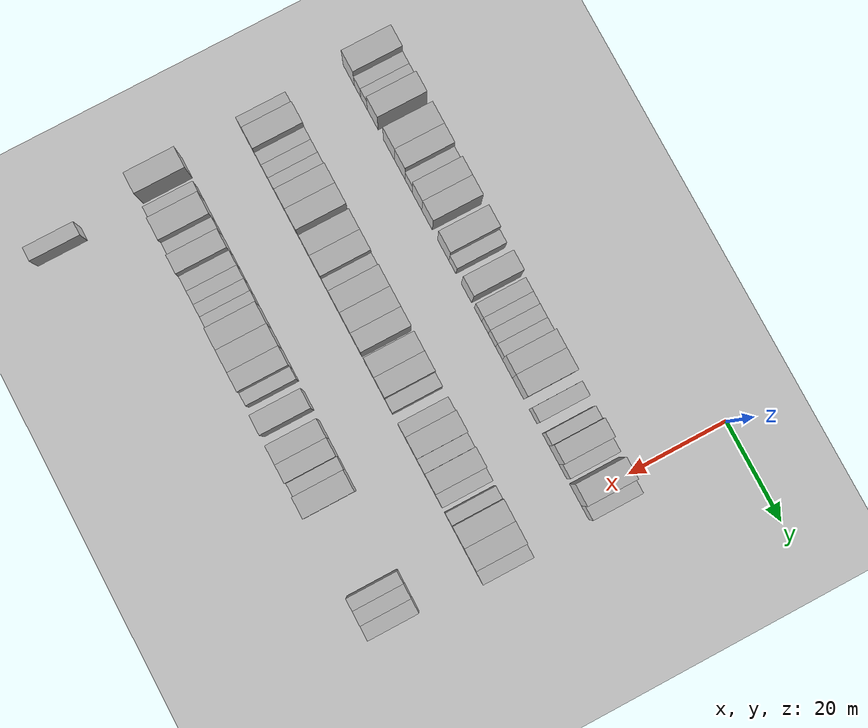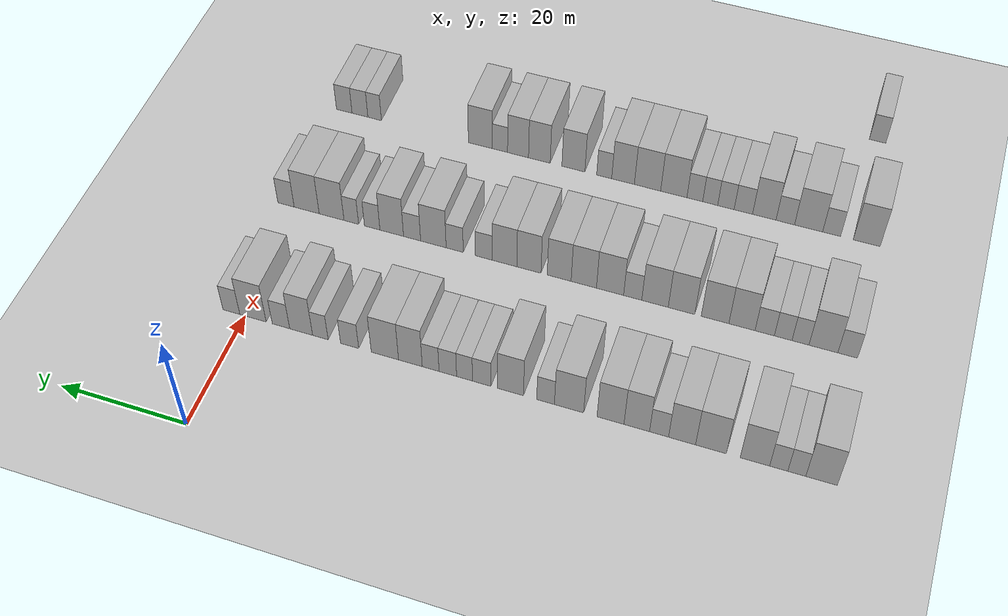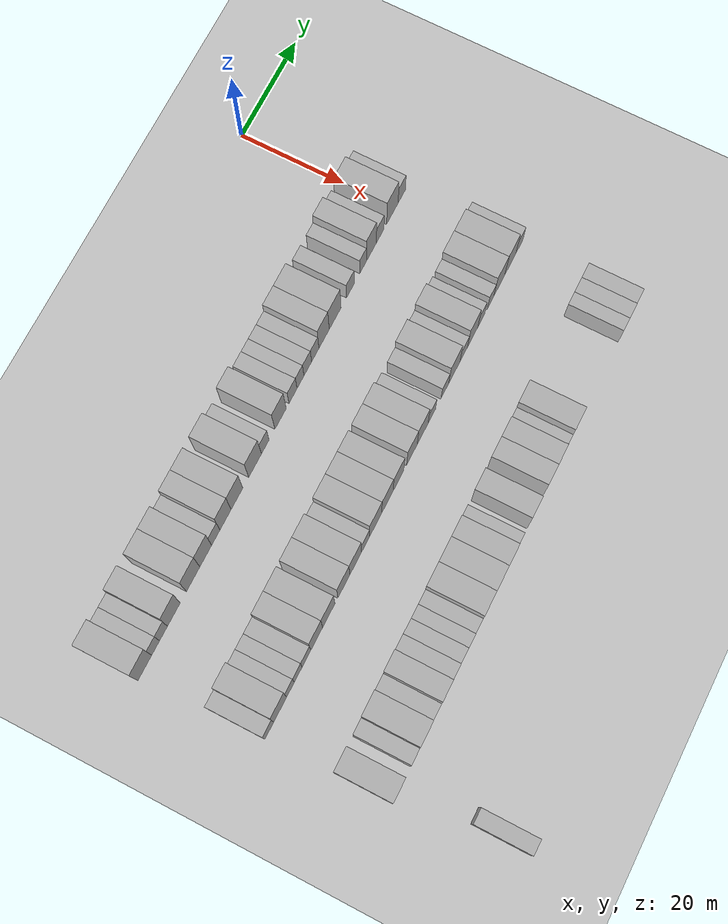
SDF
<sdf version="1.6">
 <world name="default">
  <include><name>ground_plane_1</name><uri>model://HANNAS_ground_plane</uri></include>
  <model name="building_68">
   <static>1</static>
   <pose>25.0000 -87.5973 0 0.000000 0.000000 0.000000</pose>
   <link name="link">
    <pose>0 0 4.50 0 0 0</pose>
    <collision name="collision"><geometry><box><size>10.0000 4.4231 9.0000</size></box></geometry></collision>
    <visual name="visual">
     <cast_shadows>0</cast_shadows>
     <geometry><box><size>10.0000 4.4231 9.0000</size></box></geometry>
     <material>
      <script>
       <uri>model://HANNAS_wall/materials/scripts</uri>
       <uri>model://HANNAS_wall/materials/textures</uri>
       <name>vrc/HANNAS_wall</name>
      </script>
     </material>
    </visual>
   </link>
  </model>
  <model name="building_69">
   <static>1</static>
   <pose>25.0000 -84.1186 0 0.000000 0.000000 0.000000</pose>
   <link name="link">
    <pose>0 0 3.00 0 0 0</pose>
    <collision name="collision"><geometry><box><size>10.0000 2.5343 6.0000</size></box></geometry></collision>
    <visual name="visual">
     <cast_shadows>0</cast_shadows>
     <geometry><box><size>10.0000 2.5343 6.0000</size></box></geometry>
     <material>
      <script>
       <uri>model://HANNAS_wall/materials/scripts</uri>
       <uri>model://HANNAS_wall/materials/textures</uri>
       <name>vrc/HANNAS_wall</name>
      </script>
     </material>
    </visual>
   </link>
  </model>
  <model name="building_70">
   <static>1</static>
   <pose>25.0000 -81.5638 0 0.000000 0.000000 0.000000</pose>
   <link name="link">
    <pose>0 0 3.00 0 0 0</pose>
    <collision name="collision"><geometry><box><size>10.0000 2.5753 6.0000</size></box></geometry></collision>
    <visual name="visual">
     <cast_shadows>0</cast_shadows>
     <geometry><box><size>10.0000 2.5753 6.0000</size></box></geometry>
     <material>
      <script>
       <uri>model://HANNAS_wall/materials/scripts</uri>
       <uri>model://HANNAS_wall/materials/textures</uri>
       <name>vrc/HANNAS_wall</name>
      </script>
     </material>
    </visual>
   </link>
  </model>
  <model name="building_71">
   <static>1</static>
   <pose>25.0000 -78.1789 0 0.000000 0.000000 0.000000</pose>
   <link name="link">
    <pose>0 0 4.50 0 0 0</pose>
    <collision name="collision"><geometry><box><size>10.0000 4.1944 9.0000</size></box></geometry></collision>
    <visual name="visual">
     <cast_shadows>0</cast_shadows>
     <geometry><box><size>10.0000 4.1944 9.0000</size></box></geometry>
     <material>
      <script>
       <uri>model://HANNAS_wall/materials/scripts</uri>
       <uri>model://HANNAS_wall/materials/textures</uri>
       <name>vrc/HANNAS_wall</name>
      </script>
     </material>
    </visual>
   </link>
  </model>
  <model name="building_72">
   <static>1</static>
   <pose>25.0000 -71.8612 0 0.000000 0.000000 0.000000</pose>
   <link name="link">
    <pose>0 0 4.50 0 0 0</pose>
    <collision name="collision"><geometry><box><size>10.0000 4.4412 9.0000</size></box></geometry></collision>
    <visual name="visual">
     <cast_shadows>0</cast_shadows>
     <geometry><box><size>10.0000 4.4412 9.0000</size></box></geometry>
     <material>
      <script>
       <uri>model://HANNAS_wall/materials/scripts</uri>
       <uri>model://HANNAS_wall/materials/textures</uri>
       <name>vrc/HANNAS_wall</name>
      </script>
     </material>
    </visual>
   </link>
  </model>
  <model name="building_73">
   <static>1</static>
   <pose>25.0000 -67.6730 0 0.000000 0.000000 0.000000</pose>
   <link name="link">
    <pose>0 0 4.50 0 0 0</pose>
    <collision name="collision"><geometry><box><size>10.0000 3.9351 9.0000</size></box></geometry></collision>
    <visual name="visual">
     <cast_shadows>0</cast_shadows>
     <geometry><box><size>10.0000 3.9351 9.0000</size></box></geometry>
     <material>
      <script>
       <uri>model://HANNAS_wall/materials/scripts</uri>
       <uri>model://HANNAS_wall/materials/textures</uri>
       <name>vrc/HANNAS_wall</name>
      </script>
     </material>
    </visual>
   </link>
  </model>
  <model name="building_74">
   <static>1</static>
   <pose>25.0000 -64.3111 0 0.000000 0.000000 0.000000</pose>
   <link name="link">
    <pose>0 0 3.00 0 0 0</pose>
    <collision name="collision"><geometry><box><size>10.0000 2.7887 6.0000</size></box></geometry></collision>
    <visual name="visual">
     <cast_shadows>0</cast_shadows>
     <geometry><box><size>10.0000 2.7887 6.0000</size></box></geometry>
     <material>
      <script>
       <uri>model://HANNAS_wall/materials/scripts</uri>
       <uri>model://HANNAS_wall/materials/textures</uri>
       <name>vrc/HANNAS_wall</name>
      </script>
     </material>
    </visual>
   </link>
  </model>
  <model name="building_75">
   <static>1</static>
   <pose>25.0000 -61.0337 0 0.000000 0.000000 0.000000</pose>
   <link name="link">
    <pose>0 0 4.50 0 0 0</pose>
    <collision name="collision"><geometry><box><size>10.0000 3.7660 9.0000</size></box></geometry></collision>
    <visual name="visual">
     <cast_shadows>0</cast_shadows>
     <geometry><box><size>10.0000 3.7660 9.0000</size></box></geometry>
     <material>
      <script>
       <uri>model://HANNAS_wall/materials/scripts</uri>
       <uri>model://HANNAS_wall/materials/textures</uri>
       <name>vrc/HANNAS_wall</name>
      </script>
     </material>
    </visual>
   </link>
  </model>
  <model name="building_76">
   <static>1</static>
   <pose>25.0000 -57.1491 0 0.000000 0.000000 0.000000</pose>
   <link name="link">
    <pose>0 0 4.50 0 0 0</pose>
    <collision name="collision"><geometry><box><size>10.0000 4.0032 9.0000</size></box></geometry></collision>
    <visual name="visual">
     <cast_shadows>0</cast_shadows>
     <geometry><box><size>10.0000 4.0032 9.0000</size></box></geometry>
     <material>
      <script>
       <uri>model://HANNAS_wall/materials/scripts</uri>
       <uri>model://HANNAS_wall/materials/textures</uri>
       <name>vrc/HANNAS_wall</name>
      </script>
     </material>
    </visual>
   </link>
  </model>
  <model name="building_77">
   <static>1</static>
   <pose>25.0000 -50.9535 0 0.000000 0.000000 0.000000</pose>
   <link name="link">
    <pose>0 0 4.50 0 0 0</pose>
    <collision name="collision"><geometry><box><size>10.0000 4.3878 9.0000</size></box></geometry></collision>
    <visual name="visual">
     <cast_shadows>0</cast_shadows>
     <geometry><box><size>10.0000 4.3878 9.0000</size></box></geometry>
     <material>
      <script>
       <uri>model://HANNAS_wall/materials/scripts</uri>
       <uri>model://HANNAS_wall/materials/textures</uri>
       <name>vrc/HANNAS_wall</name>
      </script>
     </material>
    </visual>
   </link>
  </model>
  <model name="building_78">
   <static>1</static>
   <pose>25.0000 -47.4214 0 0.000000 0.000000 0.000000</pose>
   <link name="link">
    <pose>0 0 3.00 0 0 0</pose>
    <collision name="collision"><geometry><box><size>10.0000 2.6765 6.0000</size></box></geometry></collision>
    <visual name="visual">
     <cast_shadows>0</cast_shadows>
     <geometry><box><size>10.0000 2.6765 6.0000</size></box></geometry>
     <material>
      <script>
       <uri>model://HANNAS_wall/materials/scripts</uri>
       <uri>model://HANNAS_wall/materials/textures</uri>
       <name>vrc/HANNAS_wall</name>
      </script>
     </material>
    </visual>
   </link>
  </model>
  <model name="building_79">
   <static>1</static>
   <pose>25.0000 -42.0952 0 0.000000 0.000000 0.000000</pose>
   <link name="link">
    <pose>0 0 4.50 0 0 0</pose>
    <collision name="collision"><geometry><box><size>10.0000 3.9759 9.0000</size></box></geometry></collision>
    <visual name="visual">
     <cast_shadows>0</cast_shadows>
     <geometry><box><size>10.0000 3.9759 9.0000</size></box></geometry>
     <material>
      <script>
       <uri>model://HANNAS_wall/materials/scripts</uri>
       <uri>model://HANNAS_wall/materials/textures</uri>
       <name>vrc/HANNAS_wall</name>
      </script>
     </material>
    </visual>
   </link>
  </model>
  <model name="building_80">
   <static>1</static>
   <pose>25.0000 -37.6862 0 0.000000 0.000000 0.000000</pose>
   <link name="link">
    <pose>0 0 3.00 0 0 0</pose>
    <collision name="collision"><geometry><box><size>10.0000 2.8421 6.0000</size></box></geometry></collision>
    <visual name="visual">
     <cast_shadows>0</cast_shadows>
     <geometry><box><size>10.0000 2.8421 6.0000</size></box></geometry>
     <material>
      <script>
       <uri>model://HANNAS_wall/materials/scripts</uri>
       <uri>model://HANNAS_wall/materials/textures</uri>
       <name>vrc/HANNAS_wall</name>
      </script>
     </material>
    </visual>
   </link>
  </model>
  <model name="building_81">
   <static>1</static>
   <pose>25.0000 -35.0320 0 0.000000 0.000000 0.000000</pose>
   <link name="link">
    <pose>0 0 3.00 0 0 0</pose>
    <collision name="collision"><geometry><box><size>10.0000 2.4664 6.0000</size></box></geometry></collision>
    <visual name="visual">
     <cast_shadows>0</cast_shadows>
     <geometry><box><size>10.0000 2.4664 6.0000</size></box></geometry>
     <material>
      <script>
       <uri>model://HANNAS_wall/materials/scripts</uri>
       <uri>model://HANNAS_wall/materials/textures</uri>
       <name>vrc/HANNAS_wall</name>
      </script>
     </material>
    </visual>
   </link>
  </model>
  <model name="building_82">
   <static>1</static>
   <pose>25.0000 -32.4354 0 0.000000 0.000000 0.000000</pose>
   <link name="link">
    <pose>0 0 3.00 0 0 0</pose>
    <collision name="collision"><geometry><box><size>10.0000 2.7266 6.0000</size></box></geometry></collision>
    <visual name="visual">
     <cast_shadows>0</cast_shadows>
     <geometry><box><size>10.0000 2.7266 6.0000</size></box></geometry>
     <material>
      <script>
       <uri>model://HANNAS_wall/materials/scripts</uri>
       <uri>model://HANNAS_wall/materials/textures</uri>
       <name>vrc/HANNAS_wall</name>
      </script>
     </material>
    </visual>
   </link>
  </model>
  <model name="building_83">
   <static>1</static>
   <pose>25.0000 -29.7611 0 0.000000 0.000000 0.000000</pose>
   <link name="link">
    <pose>0 0 3.00 0 0 0</pose>
    <collision name="collision"><geometry><box><size>10.0000 2.6221 6.0000</size></box></geometry></collision>
    <visual name="visual">
     <cast_shadows>0</cast_shadows>
     <geometry><box><size>10.0000 2.6221 6.0000</size></box></geometry>
     <material>
      <script>
       <uri>model://HANNAS_wall/materials/scripts</uri>
       <uri>model://HANNAS_wall/materials/textures</uri>
       <name>vrc/HANNAS_wall</name>
      </script>
     </material>
    </visual>
   </link>
  </model>
  <model name="building_84">
   <static>1</static>
   <pose>25.0000 -26.5874 0 0.000000 0.000000 0.000000</pose>
   <link name="link">
    <pose>0 0 4.50 0 0 0</pose>
    <collision name="collision"><geometry><box><size>10.0000 3.7253 9.0000</size></box></geometry></collision>
    <visual name="visual">
     <cast_shadows>0</cast_shadows>
     <geometry><box><size>10.0000 3.7253 9.0000</size></box></geometry>
     <material>
      <script>
       <uri>model://HANNAS_wall/materials/scripts</uri>
       <uri>model://HANNAS_wall/materials/textures</uri>
       <name>vrc/HANNAS_wall</name>
      </script>
     </material>
    </visual>
   </link>
  </model>
  <model name="building_85">
   <static>1</static>
   <pose>25.0000 -22.5666 0 0.000000 0.000000 0.000000</pose>
   <link name="link">
    <pose>0 0 4.50 0 0 0</pose>
    <collision name="collision"><geometry><box><size>10.0000 4.3162 9.0000</size></box></geometry></collision>
    <visual name="visual">
     <cast_shadows>0</cast_shadows>
     <geometry><box><size>10.0000 4.3162 9.0000</size></box></geometry>
     <material>
      <script>
       <uri>model://HANNAS_wall/materials/scripts</uri>
       <uri>model://HANNAS_wall/materials/textures</uri>
       <name>vrc/HANNAS_wall</name>
      </script>
     </material>
    </visual>
   </link>
  </model>
  <model name="building_86">
   <static>1</static>
   <pose>25.0000 -16.9596 0 0.000000 0.000000 0.000000</pose>
   <link name="link">
    <pose>0 0 3.00 0 0 0</pose>
    <collision name="collision"><geometry><box><size>10.0000 2.8979 6.0000</size></box></geometry></collision>
    <visual name="visual">
     <cast_shadows>0</cast_shadows>
     <geometry><box><size>10.0000 2.8979 6.0000</size></box></geometry>
     <material>
      <script>
       <uri>model://HANNAS_wall/materials/scripts</uri>
       <uri>model://HANNAS_wall/materials/textures</uri>
       <name>vrc/HANNAS_wall</name>
      </script>
     </material>
    </visual>
   </link>
  </model>
  <model name="building_87">
   <static>1</static>
   <pose>25.0000 -12.2585 0 0.000000 0.000000 0.000000</pose>
   <link name="link">
    <pose>0 0 3.00 0 0 0</pose>
    <collision name="collision"><geometry><box><size>10.0000 2.5043 6.0000</size></box></geometry></collision>
    <visual name="visual">
     <cast_shadows>0</cast_shadows>
     <geometry><box><size>10.0000 2.5043 6.0000</size></box></geometry>
     <material>
      <script>
       <uri>model://HANNAS_wall/materials/scripts</uri>
       <uri>model://HANNAS_wall/materials/textures</uri>
       <name>vrc/HANNAS_wall</name>
      </script>
     </material>
    </visual>
   </link>
  </model>
  <model name="building_88">
   <static>1</static>
   <pose>25.0000 -9.1499 0 0.000000 0.000000 0.000000</pose>
   <link name="link">
    <pose>0 0 4.50 0 0 0</pose>
    <collision name="collision"><geometry><box><size>10.0000 3.7129 9.0000</size></box></geometry></collision>
    <visual name="visual">
     <cast_shadows>0</cast_shadows>
     <geometry><box><size>10.0000 3.7129 9.0000</size></box></geometry>
     <material>
      <script>
       <uri>model://HANNAS_wall/materials/scripts</uri>
       <uri>model://HANNAS_wall/materials/textures</uri>
       <name>vrc/HANNAS_wall</name>
      </script>
     </material>
    </visual>
   </link>
  </model>
  <model name="building_89">
   <static>1</static>
   <pose>25.0000 -5.8731 0 0.000000 0.000000 0.000000</pose>
   <link name="link">
    <pose>0 0 3.00 0 0 0</pose>
    <collision name="collision"><geometry><box><size>10.0000 2.8407 6.0000</size></box></geometry></collision>
    <visual name="visual">
     <cast_shadows>0</cast_shadows>
     <geometry><box><size>10.0000 2.8407 6.0000</size></box></geometry>
     <material>
      <script>
       <uri>model://HANNAS_wall/materials/scripts</uri>
       <uri>model://HANNAS_wall/materials/textures</uri>
       <name>vrc/HANNAS_wall</name>
      </script>
     </material>
    </visual>
   </link>
  </model>
  <model name="building_90">
   <static>1</static>
   <pose>25.0000 -1.2825 0 0.000000 0.000000 0.000000</pose>
   <link name="link">
    <pose>0 0 4.50 0 0 0</pose>
    <collision name="collision"><geometry><box><size>10.0000 4.3404 9.0000</size></box></geometry></collision>
    <visual name="visual">
     <cast_shadows>0</cast_shadows>
     <geometry><box><size>10.0000 4.3404 9.0000</size></box></geometry>
     <material>
      <script>
       <uri>model://HANNAS_wall/materials/scripts</uri>
       <uri>model://HANNAS_wall/materials/textures</uri>
       <name>vrc/HANNAS_wall</name>
      </script>
     </material>
    </visual>
   </link>
  </model>
  <model name="building_91">
   <static>1</static>
   <pose>25.0000 2.2834 0 0.000000 0.000000 0.000000</pose>
   <link name="link">
    <pose>0 0 3.00 0 0 0</pose>
    <collision name="collision"><geometry><box><size>10.0000 2.7916 6.0000</size></box></geometry></collision>
    <visual name="visual">
     <cast_shadows>0</cast_shadows>
     <geometry><box><size>10.0000 2.7916 6.0000</size></box></geometry>
     <material>
      <script>
       <uri>model://HANNAS_wall/materials/scripts</uri>
       <uri>model://HANNAS_wall/materials/textures</uri>
       <name>vrc/HANNAS_wall</name>
      </script>
     </material>
    </visual>
   </link>
  </model>
  <model name="building_253">
   <static>1</static>
   <pose>47.0000 -87.2114 0 0.000000 0.000000 0.000000</pose>
   <link name="link">
    <pose>0 0 3.00 0 0 0</pose>
    <collision name="collision"><geometry><box><size>10.0000 2.9215 6.0000</size></box></geometry></collision>
    <visual name="visual">
     <cast_shadows>0</cast_shadows>
     <geometry><box><size>10.0000 2.9215 6.0000</size></box></geometry>
     <material>
      <script>
       <uri>model://HANNAS_wall/materials/scripts</uri>
       <uri>model://HANNAS_wall/materials/textures</uri>
       <name>vrc/HANNAS_wall</name>
      </script>
     </material>
    </visual>
   </link>
  </model>
  <model name="building_254">
   <static>1</static>
   <pose>47.0000 -83.5882 0 0.000000 0.000000 0.000000</pose>
   <link name="link">
    <pose>0 0 4.50 0 0 0</pose>
    <collision name="collision"><geometry><box><size>10.0000 4.3249 9.0000</size></box></geometry></collision>
    <visual name="visual">
     <cast_shadows>0</cast_shadows>
     <geometry><box><size>10.0000 4.3249 9.0000</size></box></geometry>
     <material>
      <script>
       <uri>model://HANNAS_wall/materials/scripts</uri>
       <uri>model://HANNAS_wall/materials/textures</uri>
       <name>vrc/HANNAS_wall</name>
      </script>
     </material>
    </visual>
   </link>
  </model>
  <model name="building_255">
   <static>1</static>
   <pose>47.0000 -80.1519 0 0.000000 0.000000 0.000000</pose>
   <link name="link">
    <pose>0 0 3.00 0 0 0</pose>
    <collision name="collision"><geometry><box><size>10.0000 2.5478 6.0000</size></box></geometry></collision>
    <visual name="visual">
     <cast_shadows>0</cast_shadows>
     <geometry><box><size>10.0000 2.5478 6.0000</size></box></geometry>
     <material>
      <script>
       <uri>model://HANNAS_wall/materials/scripts</uri>
       <uri>model://HANNAS_wall/materials/textures</uri>
       <name>vrc/HANNAS_wall</name>
      </script>
     </material>
    </visual>
   </link>
  </model>
  <model name="building_256">
   <static>1</static>
   <pose>47.0000 -77.5478 0 0.000000 0.000000 0.000000</pose>
   <link name="link">
    <pose>0 0 3.00 0 0 0</pose>
    <collision name="collision"><geometry><box><size>10.0000 2.6605 6.0000</size></box></geometry></collision>
    <visual name="visual">
     <cast_shadows>0</cast_shadows>
     <geometry><box><size>10.0000 2.6605 6.0000</size></box></geometry>
     <material>
      <script>
       <uri>model://HANNAS_wall/materials/scripts</uri>
       <uri>model://HANNAS_wall/materials/textures</uri>
       <name>vrc/HANNAS_wall</name>
      </script>
     </material>
    </visual>
   </link>
  </model>
  <model name="building_257">
   <static>1</static>
   <pose>47.0000 -74.7506 0 0.000000 0.000000 0.000000</pose>
   <link name="link">
    <pose>0 0 3.00 0 0 0</pose>
    <collision name="collision"><geometry><box><size>10.0000 2.9339 6.0000</size></box></geometry></collision>
    <visual name="visual">
     <cast_shadows>0</cast_shadows>
     <geometry><box><size>10.0000 2.9339 6.0000</size></box></geometry>
     <material>
      <script>
       <uri>model://HANNAS_wall/materials/scripts</uri>
       <uri>model://HANNAS_wall/materials/textures</uri>
       <name>vrc/HANNAS_wall</name>
      </script>
     </material>
    </visual>
   </link>
  </model>
  <model name="building_258">
   <static>1</static>
   <pose>47.0000 -71.2805 0 0.000000 0.000000 0.000000</pose>
   <link name="link">
    <pose>0 0 4.50 0 0 0</pose>
    <collision name="collision"><geometry><box><size>10.0000 4.0063 9.0000</size></box></geometry></collision>
    <visual name="visual">
     <cast_shadows>0</cast_shadows>
     <geometry><box><size>10.0000 4.0063 9.0000</size></box></geometry>
     <material>
      <script>
       <uri>model://HANNAS_wall/materials/scripts</uri>
       <uri>model://HANNAS_wall/materials/textures</uri>
       <name>vrc/HANNAS_wall</name>
      </script>
     </material>
    </visual>
   </link>
  </model>
  <model name="building_259">
   <static>1</static>
   <pose>47.0000 -67.1503 0 0.000000 0.000000 0.000000</pose>
   <link name="link">
    <pose>0 0 4.50 0 0 0</pose>
    <collision name="collision"><geometry><box><size>10.0000 4.2540 9.0000</size></box></geometry></collision>
    <visual name="visual">
     <cast_shadows>0</cast_shadows>
     <geometry><box><size>10.0000 4.2540 9.0000</size></box></geometry>
     <material>
      <script>
       <uri>model://HANNAS_wall/materials/scripts</uri>
       <uri>model://HANNAS_wall/materials/textures</uri>
       <name>vrc/HANNAS_wall</name>
      </script>
     </material>
    </visual>
   </link>
  </model>
  <model name="building_260">
   <static>1</static>
   <pose>47.0000 -61.9632 0 0.000000 0.000000 0.000000</pose>
   <link name="link">
    <pose>0 0 4.50 0 0 0</pose>
    <collision name="collision"><geometry><box><size>10.0000 4.1202 9.0000</size></box></geometry></collision>
    <visual name="visual">
     <cast_shadows>0</cast_shadows>
     <geometry><box><size>10.0000 4.1202 9.0000</size></box></geometry>
     <material>
      <script>
       <uri>model://HANNAS_wall/materials/scripts</uri>
       <uri>model://HANNAS_wall/materials/textures</uri>
       <name>vrc/HANNAS_wall</name>
      </script>
     </material>
    </visual>
   </link>
  </model>
  <model name="building_261">
   <static>1</static>
   <pose>47.0000 -57.8300 0 0.000000 0.000000 0.000000</pose>
   <link name="link">
    <pose>0 0 4.50 0 0 0</pose>
    <collision name="collision"><geometry><box><size>10.0000 4.1463 9.0000</size></box></geometry></collision>
    <visual name="visual">
     <cast_shadows>0</cast_shadows>
     <geometry><box><size>10.0000 4.1463 9.0000</size></box></geometry>
     <material>
      <script>
       <uri>model://HANNAS_wall/materials/scripts</uri>
       <uri>model://HANNAS_wall/materials/textures</uri>
       <name>vrc/HANNAS_wall</name>
      </script>
     </material>
    </visual>
   </link>
  </model>
  <model name="building_262">
   <static>1</static>
   <pose>47.0000 -54.3291 0 0.000000 0.000000 0.000000</pose>
   <link name="link">
    <pose>0 0 3.00 0 0 0</pose>
    <collision name="collision"><geometry><box><size>10.0000 2.8554 6.0000</size></box></geometry></collision>
    <visual name="visual">
     <cast_shadows>0</cast_shadows>
     <geometry><box><size>10.0000 2.8554 6.0000</size></box></geometry>
     <material>
      <script>
       <uri>model://HANNAS_wall/materials/scripts</uri>
       <uri>model://HANNAS_wall/materials/textures</uri>
       <name>vrc/HANNAS_wall</name>
      </script>
     </material>
    </visual>
   </link>
  </model>
  <model name="building_263">
   <static>1</static>
   <pose>47.0000 -50.7505 0 0.000000 0.000000 0.000000</pose>
   <link name="link">
    <pose>0 0 4.50 0 0 0</pose>
    <collision name="collision"><geometry><box><size>10.0000 4.3019 9.0000</size></box></geometry></collision>
    <visual name="visual">
     <cast_shadows>0</cast_shadows>
     <geometry><box><size>10.0000 4.3019 9.0000</size></box></geometry>
     <material>
      <script>
       <uri>model://HANNAS_wall/materials/scripts</uri>
       <uri>model://HANNAS_wall/materials/textures</uri>
       <name>vrc/HANNAS_wall</name>
      </script>
     </material>
    </visual>
   </link>
  </model>
  <model name="building_264">
   <static>1</static>
   <pose>47.0000 -46.5747 0 0.000000 0.000000 0.000000</pose>
   <link name="link">
    <pose>0 0 4.50 0 0 0</pose>
    <collision name="collision"><geometry><box><size>10.0000 4.0496 9.0000</size></box></geometry></collision>
    <visual name="visual">
     <cast_shadows>0</cast_shadows>
     <geometry><box><size>10.0000 4.0496 9.0000</size></box></geometry>
     <material>
      <script>
       <uri>model://HANNAS_wall/materials/scripts</uri>
       <uri>model://HANNAS_wall/materials/textures</uri>
       <name>vrc/HANNAS_wall</name>
      </script>
     </material>
    </visual>
   </link>
  </model>
  <model name="building_265">
   <static>1</static>
   <pose>47.0000 -42.6296 0 0.000000 0.000000 0.000000</pose>
   <link name="link">
    <pose>0 0 4.50 0 0 0</pose>
    <collision name="collision"><geometry><box><size>10.0000 3.8408 9.0000</size></box></geometry></collision>
    <visual name="visual">
     <cast_shadows>0</cast_shadows>
     <geometry><box><size>10.0000 3.8408 9.0000</size></box></geometry>
     <material>
      <script>
       <uri>model://HANNAS_wall/materials/scripts</uri>
       <uri>model://HANNAS_wall/materials/textures</uri>
       <name>vrc/HANNAS_wall</name>
      </script>
     </material>
    </visual>
   </link>
  </model>
  <model name="building_266">
   <static>1</static>
   <pose>47.0000 -37.7556 0 0.000000 0.000000 0.000000</pose>
   <link name="link">
    <pose>0 0 4.50 0 0 0</pose>
    <collision name="collision"><geometry><box><size>10.0000 3.9072 9.0000</size></box></geometry></collision>
    <visual name="visual">
     <cast_shadows>0</cast_shadows>
     <geometry><box><size>10.0000 3.9072 9.0000</size></box></geometry>
     <material>
      <script>
       <uri>model://HANNAS_wall/materials/scripts</uri>
       <uri>model://HANNAS_wall/materials/textures</uri>
       <name>vrc/HANNAS_wall</name>
      </script>
     </material>
    </visual>
   </link>
  </model>
  <model name="building_267">
   <static>1</static>
   <pose>47.0000 -33.8007 0 0.000000 0.000000 0.000000</pose>
   <link name="link">
    <pose>0 0 4.50 0 0 0</pose>
    <collision name="collision"><geometry><box><size>10.0000 4.0026 9.0000</size></box></geometry></collision>
    <visual name="visual">
     <cast_shadows>0</cast_shadows>
     <geometry><box><size>10.0000 4.0026 9.0000</size></box></geometry>
     <material>
      <script>
       <uri>model://HANNAS_wall/materials/scripts</uri>
       <uri>model://HANNAS_wall/materials/textures</uri>
       <name>vrc/HANNAS_wall</name>
      </script>
     </material>
    </visual>
   </link>
  </model>
  <model name="building_268">
   <static>1</static>
   <pose>47.0000 -30.4081 0 0.000000 0.000000 0.000000</pose>
   <link name="link">
    <pose>0 0 3.00 0 0 0</pose>
    <collision name="collision"><geometry><box><size>10.0000 2.7826 6.0000</size></box></geometry></collision>
    <visual name="visual">
     <cast_shadows>0</cast_shadows>
     <geometry><box><size>10.0000 2.7826 6.0000</size></box></geometry>
     <material>
      <script>
       <uri>model://HANNAS_wall/materials/scripts</uri>
       <uri>model://HANNAS_wall/materials/textures</uri>
       <name>vrc/HANNAS_wall</name>
      </script>
     </material>
    </visual>
   </link>
  </model>
  <model name="building_269">
   <static>1</static>
   <pose>47.0000 -25.6001 0 0.000000 0.000000 0.000000</pose>
   <link name="link">
    <pose>0 0 3.00 0 0 0</pose>
    <collision name="collision"><geometry><box><size>10.0000 2.8333 6.0000</size></box></geometry></collision>
    <visual name="visual">
     <cast_shadows>0</cast_shadows>
     <geometry><box><size>10.0000 2.8333 6.0000</size></box></geometry>
     <material>
      <script>
       <uri>model://HANNAS_wall/materials/scripts</uri>
       <uri>model://HANNAS_wall/materials/textures</uri>
       <name>vrc/HANNAS_wall</name>
      </script>
     </material>
    </visual>
   </link>
  </model>
  <model name="building_270">
   <static>1</static>
   <pose>47.0000 -22.0554 0 0.000000 0.000000 0.000000</pose>
   <link name="link">
    <pose>0 0 4.50 0 0 0</pose>
    <collision name="collision"><geometry><box><size>10.0000 4.2562 9.0000</size></box></geometry></collision>
    <visual name="visual">
     <cast_shadows>0</cast_shadows>
     <geometry><box><size>10.0000 4.2562 9.0000</size></box></geometry>
     <material>
      <script>
       <uri>model://HANNAS_wall/materials/scripts</uri>
       <uri>model://HANNAS_wall/materials/textures</uri>
       <name>vrc/HANNAS_wall</name>
      </script>
     </material>
    </visual>
   </link>
  </model>
  <model name="building_271">
   <static>1</static>
   <pose>47.0000 -18.4981 0 0.000000 0.000000 0.000000</pose>
   <link name="link">
    <pose>0 0 3.00 0 0 0</pose>
    <collision name="collision"><geometry><box><size>10.0000 2.8584 6.0000</size></box></geometry></collision>
    <visual name="visual">
     <cast_shadows>0</cast_shadows>
     <geometry><box><size>10.0000 2.8584 6.0000</size></box></geometry>
     <material>
      <script>
       <uri>model://HANNAS_wall/materials/scripts</uri>
       <uri>model://HANNAS_wall/materials/textures</uri>
       <name>vrc/HANNAS_wall</name>
      </script>
     </material>
    </visual>
   </link>
  </model>
  <model name="building_272">
   <static>1</static>
   <pose>47.0000 -15.0814 0 0.000000 0.000000 0.000000</pose>
   <link name="link">
    <pose>0 0 4.50 0 0 0</pose>
    <collision name="collision"><geometry><box><size>10.0000 3.9749 9.0000</size></box></geometry></collision>
    <visual name="visual">
     <cast_shadows>0</cast_shadows>
     <geometry><box><size>10.0000 3.9749 9.0000</size></box></geometry>
     <material>
      <script>
       <uri>model://HANNAS_wall/materials/scripts</uri>
       <uri>model://HANNAS_wall/materials/textures</uri>
       <name>vrc/HANNAS_wall</name>
      </script>
     </material>
    </visual>
   </link>
  </model>
  <model name="building_273">
   <static>1</static>
   <pose>47.0000 -11.7850 0 0.000000 0.000000 0.000000</pose>
   <link name="link">
    <pose>0 0 3.00 0 0 0</pose>
    <collision name="collision"><geometry><box><size>10.0000 2.6180 6.0000</size></box></geometry></collision>
    <visual name="visual">
     <cast_shadows>0</cast_shadows>
     <geometry><box><size>10.0000 2.6180 6.0000</size></box></geometry>
     <material>
      <script>
       <uri>model://HANNAS_wall/materials/scripts</uri>
       <uri>model://HANNAS_wall/materials/textures</uri>
       <name>vrc/HANNAS_wall</name>
      </script>
     </material>
    </visual>
   </link>
  </model>
  <model name="building_274">
   <static>1</static>
   <pose>47.0000 -8.2308 0 0.000000 0.000000 0.000000</pose>
   <link name="link">
    <pose>0 0 3.00 0 0 0</pose>
    <collision name="collision"><geometry><box><size>10.0000 2.4904 6.0000</size></box></geometry></collision>
    <visual name="visual">
     <cast_shadows>0</cast_shadows>
     <geometry><box><size>10.0000 2.4904 6.0000</size></box></geometry>
     <material>
      <script>
       <uri>model://HANNAS_wall/materials/scripts</uri>
       <uri>model://HANNAS_wall/materials/textures</uri>
       <name>vrc/HANNAS_wall</name>
      </script>
     </material>
    </visual>
   </link>
  </model>
  <model name="building_275">
   <static>1</static>
   <pose>47.0000 -4.8582 0 0.000000 0.000000 0.000000</pose>
   <link name="link">
    <pose>0 0 4.50 0 0 0</pose>
    <collision name="collision"><geometry><box><size>10.0000 4.2548 9.0000</size></box></geometry></collision>
    <visual name="visual">
     <cast_shadows>0</cast_shadows>
     <geometry><box><size>10.0000 4.2548 9.0000</size></box></geometry>
     <material>
      <script>
       <uri>model://HANNAS_wall/materials/scripts</uri>
       <uri>model://HANNAS_wall/materials/textures</uri>
       <name>vrc/HANNAS_wall</name>
      </script>
     </material>
    </visual>
   </link>
  </model>
  <model name="building_276">
   <static>1</static>
   <pose>47.0000 -0.5675 0 0.000000 0.000000 0.000000</pose>
   <link name="link">
    <pose>0 0 4.50 0 0 0</pose>
    <collision name="collision"><geometry><box><size>10.0000 4.3267 9.0000</size></box></geometry></collision>
    <visual name="visual">
     <cast_shadows>0</cast_shadows>
     <geometry><box><size>10.0000 4.3267 9.0000</size></box></geometry>
     <material>
      <script>
       <uri>model://HANNAS_wall/materials/scripts</uri>
       <uri>model://HANNAS_wall/materials/textures</uri>
       <name>vrc/HANNAS_wall</name>
      </script>
     </material>
    </visual>
   </link>
  </model>
  <model name="building_277">
   <static>1</static>
   <pose>47.0000 3.0096 0 0.000000 0.000000 0.000000</pose>
   <link name="link">
    <pose>0 0 3.00 0 0 0</pose>
    <collision name="collision"><geometry><box><size>10.0000 2.8274 6.0000</size></box></geometry></collision>
    <visual name="visual">
     <cast_shadows>0</cast_shadows>
     <geometry><box><size>10.0000 2.8274 6.0000</size></box></geometry>
     <material>
      <script>
       <uri>model://HANNAS_wall/materials/scripts</uri>
       <uri>model://HANNAS_wall/materials/textures</uri>
       <name>vrc/HANNAS_wall</name>
      </script>
     </material>
    </visual>
   </link>
  </model>
  <model name="building_449">
   <static>1</static>
   <pose>69.0000 -86.1614 0 0.000000 0.000000 0.000000</pose>
   <link name="link">
    <pose>0 0 4.50 0 0 0</pose>
    <collision name="collision"><geometry><box><size>10.0000 4.2242 9.0000</size></box></geometry></collision>
    <visual name="visual">
     <cast_shadows>0</cast_shadows>
     <geometry><box><size>10.0000 4.2242 9.0000</size></box></geometry>
     <material>
      <script>
       <uri>model://HANNAS_wall/materials/scripts</uri>
       <uri>model://HANNAS_wall/materials/textures</uri>
       <name>vrc/HANNAS_wall</name>
      </script>
     </material>
    </visual>
   </link>
  </model>
  <model name="building_450">
   <static>1</static>
   <pose>69.0000 -80.6236 0 0.000000 0.000000 0.000000</pose>
   <link name="link">
    <pose>0 0 3.00 0 0 0</pose>
    <collision name="collision"><geometry><box><size>10.0000 2.8513 6.0000</size></box></geometry></collision>
    <visual name="visual">
     <cast_shadows>0</cast_shadows>
     <geometry><box><size>10.0000 2.8513 6.0000</size></box></geometry>
     <material>
      <script>
       <uri>model://HANNAS_wall/materials/scripts</uri>
       <uri>model://HANNAS_wall/materials/textures</uri>
       <name>vrc/HANNAS_wall</name>
      </script>
     </material>
    </visual>
   </link>
  </model>
  <model name="building_451">
   <static>1</static>
   <pose>69.0000 -76.9592 0 0.000000 0.000000 0.000000</pose>
   <link name="link">
    <pose>0 0 4.50 0 0 0</pose>
    <collision name="collision"><geometry><box><size>10.0000 4.4776 9.0000</size></box></geometry></collision>
    <visual name="visual">
     <cast_shadows>0</cast_shadows>
     <geometry><box><size>10.0000 4.4776 9.0000</size></box></geometry>
     <material>
      <script>
       <uri>model://HANNAS_wall/materials/scripts</uri>
       <uri>model://HANNAS_wall/materials/textures</uri>
       <name>vrc/HANNAS_wall</name>
      </script>
     </material>
    </visual>
   </link>
  </model>
  <model name="building_452">
   <static>1</static>
   <pose>69.0000 -73.2338 0 0.000000 0.000000 0.000000</pose>
   <link name="link">
    <pose>0 0 3.00 0 0 0</pose>
    <collision name="collision"><geometry><box><size>10.0000 2.9732 6.0000</size></box></geometry></collision>
    <visual name="visual">
     <cast_shadows>0</cast_shadows>
     <geometry><box><size>10.0000 2.9732 6.0000</size></box></geometry>
     <material>
      <script>
       <uri>model://HANNAS_wall/materials/scripts</uri>
       <uri>model://HANNAS_wall/materials/textures</uri>
       <name>vrc/HANNAS_wall</name>
      </script>
     </material>
    </visual>
   </link>
  </model>
  <model name="building_453">
   <static>1</static>
   <pose>69.0000 -69.8552 0 0.000000 0.000000 0.000000</pose>
   <link name="link">
    <pose>0 0 4.50 0 0 0</pose>
    <collision name="collision"><geometry><box><size>10.0000 3.7839 9.0000</size></box></geometry></collision>
    <visual name="visual">
     <cast_shadows>0</cast_shadows>
     <geometry><box><size>10.0000 3.7839 9.0000</size></box></geometry>
     <material>
      <script>
       <uri>model://HANNAS_wall/materials/scripts</uri>
       <uri>model://HANNAS_wall/materials/textures</uri>
       <name>vrc/HANNAS_wall</name>
      </script>
     </material>
    </visual>
   </link>
  </model>
  <model name="building_454">
   <static>1</static>
   <pose>69.0000 -66.4673 0 0.000000 0.000000 0.000000</pose>
   <link name="link">
    <pose>0 0 3.00 0 0 0</pose>
    <collision name="collision"><geometry><box><size>10.0000 2.9919 6.0000</size></box></geometry></collision>
    <visual name="visual">
     <cast_shadows>0</cast_shadows>
     <geometry><box><size>10.0000 2.9919 6.0000</size></box></geometry>
     <material>
      <script>
       <uri>model://HANNAS_wall/materials/scripts</uri>
       <uri>model://HANNAS_wall/materials/textures</uri>
       <name>vrc/HANNAS_wall</name>
      </script>
     </material>
    </visual>
   </link>
  </model>
  <model name="building_455">
   <static>1</static>
   <pose>69.0000 -63.6276 0 0.000000 0.000000 0.000000</pose>
   <link name="link">
    <pose>0 0 3.00 0 0 0</pose>
    <collision name="collision"><geometry><box><size>10.0000 2.6876 6.0000</size></box></geometry></collision>
    <visual name="visual">
     <cast_shadows>0</cast_shadows>
     <geometry><box><size>10.0000 2.6876 6.0000</size></box></geometry>
     <material>
      <script>
       <uri>model://HANNAS_wall/materials/scripts</uri>
       <uri>model://HANNAS_wall/materials/textures</uri>
       <name>vrc/HANNAS_wall</name>
      </script>
     </material>
    </visual>
   </link>
  </model>
  <model name="building_456">
   <static>1</static>
   <pose>69.0000 -61.0584 0 0.000000 0.000000 0.000000</pose>
   <link name="link">
    <pose>0 0 3.00 0 0 0</pose>
    <collision name="collision"><geometry><box><size>10.0000 2.4508 6.0000</size></box></geometry></collision>
    <visual name="visual">
     <cast_shadows>0</cast_shadows>
     <geometry><box><size>10.0000 2.4508 6.0000</size></box></geometry>
     <material>
      <script>
       <uri>model://HANNAS_wall/materials/scripts</uri>
       <uri>model://HANNAS_wall/materials/textures</uri>
       <name>vrc/HANNAS_wall</name>
      </script>
     </material>
    </visual>
   </link>
  </model>
  <model name="building_457">
   <static>1</static>
   <pose>69.0000 -58.5331 0 0.000000 0.000000 0.000000</pose>
   <link name="link">
    <pose>0 0 3.00 0 0 0</pose>
    <collision name="collision"><geometry><box><size>10.0000 2.5998 6.0000</size></box></geometry></collision>
    <visual name="visual">
     <cast_shadows>0</cast_shadows>
     <geometry><box><size>10.0000 2.5998 6.0000</size></box></geometry>
     <material>
      <script>
       <uri>model://HANNAS_wall/materials/scripts</uri>
       <uri>model://HANNAS_wall/materials/textures</uri>
       <name>vrc/HANNAS_wall</name>
      </script>
     </material>
    </visual>
   </link>
  </model>
  <model name="building_458">
   <static>1</static>
   <pose>69.0000 -55.0619 0 0.000000 0.000000 0.000000</pose>
   <link name="link">
    <pose>0 0 4.50 0 0 0</pose>
    <collision name="collision"><geometry><box><size>10.0000 4.3426 9.0000</size></box></geometry></collision>
    <visual name="visual">
     <cast_shadows>0</cast_shadows>
     <geometry><box><size>10.0000 4.3426 9.0000</size></box></geometry>
     <material>
      <script>
       <uri>model://HANNAS_wall/materials/scripts</uri>
       <uri>model://HANNAS_wall/materials/textures</uri>
       <name>vrc/HANNAS_wall</name>
      </script>
     </material>
    </visual>
   </link>
  </model>
  <model name="building_459">
   <static>1</static>
   <pose>69.0000 -50.6982 0 0.000000 0.000000 0.000000</pose>
   <link name="link">
    <pose>0 0 4.50 0 0 0</pose>
    <collision name="collision"><geometry><box><size>10.0000 4.3847 9.0000</size></box></geometry></collision>
    <visual name="visual">
     <cast_shadows>0</cast_shadows>
     <geometry><box><size>10.0000 4.3847 9.0000</size></box></geometry>
     <material>
      <script>
       <uri>model://HANNAS_wall/materials/scripts</uri>
       <uri>model://HANNAS_wall/materials/textures</uri>
       <name>vrc/HANNAS_wall</name>
      </script>
     </material>
    </visual>
   </link>
  </model>
  <model name="building_460">
   <static>1</static>
   <pose>69.0000 -46.6042 0 0.000000 0.000000 0.000000</pose>
   <link name="link">
    <pose>0 0 4.50 0 0 0</pose>
    <collision name="collision"><geometry><box><size>10.0000 3.8033 9.0000</size></box></geometry></collision>
    <visual name="visual">
     <cast_shadows>0</cast_shadows>
     <geometry><box><size>10.0000 3.8033 9.0000</size></box></geometry>
     <material>
      <script>
       <uri>model://HANNAS_wall/materials/scripts</uri>
       <uri>model://HANNAS_wall/materials/textures</uri>
       <name>vrc/HANNAS_wall</name>
      </script>
     </material>
    </visual>
   </link>
  </model>
  <model name="building_461">
   <static>1</static>
   <pose>69.0000 -43.4378 0 0.000000 0.000000 0.000000</pose>
   <link name="link">
    <pose>0 0 3.00 0 0 0</pose>
    <collision name="collision"><geometry><box><size>10.0000 2.5295 6.0000</size></box></geometry></collision>
    <visual name="visual">
     <cast_shadows>0</cast_shadows>
     <geometry><box><size>10.0000 2.5295 6.0000</size></box></geometry>
     <material>
      <script>
       <uri>model://HANNAS_wall/materials/scripts</uri>
       <uri>model://HANNAS_wall/materials/textures</uri>
       <name>vrc/HANNAS_wall</name>
      </script>
     </material>
    </visual>
   </link>
  </model>
  <model name="building_462">
   <static>1</static>
   <pose>69.0000 -38.2173 0 0.000000 0.000000 0.000000</pose>
   <link name="link">
    <pose>0 0 4.50 0 0 0</pose>
    <collision name="collision"><geometry><box><size>10.0000 3.9114 9.0000</size></box></geometry></collision>
    <visual name="visual">
     <cast_shadows>0</cast_shadows>
     <geometry><box><size>10.0000 3.9114 9.0000</size></box></geometry>
     <material>
      <script>
       <uri>model://HANNAS_wall/materials/scripts</uri>
       <uri>model://HANNAS_wall/materials/textures</uri>
       <name>vrc/HANNAS_wall</name>
      </script>
     </material>
    </visual>
   </link>
  </model>
  <model name="building_463">
   <static>1</static>
   <pose>69.0000 -32.4019 0 0.000000 0.000000 0.000000</pose>
   <link name="link">
    <pose>0 0 4.50 0 0 0</pose>
    <collision name="collision"><geometry><box><size>10.0000 3.7193 9.0000</size></box></geometry></collision>
    <visual name="visual">
     <cast_shadows>0</cast_shadows>
     <geometry><box><size>10.0000 3.7193 9.0000</size></box></geometry>
     <material>
      <script>
       <uri>model://HANNAS_wall/materials/scripts</uri>
       <uri>model://HANNAS_wall/materials/textures</uri>
       <name>vrc/HANNAS_wall</name>
      </script>
     </material>
    </visual>
   </link>
  </model>
  <model name="building_464">
   <static>1</static>
   <pose>69.0000 -28.7295 0 0.000000 0.000000 0.000000</pose>
   <link name="link">
    <pose>0 0 4.50 0 0 0</pose>
    <collision name="collision"><geometry><box><size>10.0000 3.6255 9.0000</size></box></geometry></collision>
    <visual name="visual">
     <cast_shadows>0</cast_shadows>
     <geometry><box><size>10.0000 3.6255 9.0000</size></box></geometry>
     <material>
      <script>
       <uri>model://HANNAS_wall/materials/scripts</uri>
       <uri>model://HANNAS_wall/materials/textures</uri>
       <name>vrc/HANNAS_wall</name>
      </script>
     </material>
    </visual>
   </link>
  </model>
  <model name="building_465">
   <static>1</static>
   <pose>69.0000 -25.6076 0 0.000000 0.000000 0.000000</pose>
   <link name="link">
    <pose>0 0 3.00 0 0 0</pose>
    <collision name="collision"><geometry><box><size>10.0000 2.6184 6.0000</size></box></geometry></collision>
    <visual name="visual">
     <cast_shadows>0</cast_shadows>
     <geometry><box><size>10.0000 2.6184 6.0000</size></box></geometry>
     <material>
      <script>
       <uri>model://HANNAS_wall/materials/scripts</uri>
       <uri>model://HANNAS_wall/materials/textures</uri>
       <name>vrc/HANNAS_wall</name>
      </script>
     </material>
    </visual>
   </link>
  </model>
  <model name="building_466">
   <static>1</static>
   <pose>69.0000 -22.2007 0 0.000000 0.000000 0.000000</pose>
   <link name="link">
    <pose>0 0 4.50 0 0 0</pose>
    <collision name="collision"><geometry><box><size>10.0000 4.1954 9.0000</size></box></geometry></collision>
    <visual name="visual">
     <cast_shadows>0</cast_shadows>
     <geometry><box><size>10.0000 4.1954 9.0000</size></box></geometry>
     <material>
      <script>
       <uri>model://HANNAS_wall/materials/scripts</uri>
       <uri>model://HANNAS_wall/materials/textures</uri>
       <name>vrc/HANNAS_wall</name>
      </script>
     </material>
    </visual>
   </link>
  </model>
  <model name="building_467">
   <static>1</static>
   <pose>69.0000 -3.4424 0 0.000000 0.000000 0.000000</pose>
   <link name="link">
    <pose>0 0 3.00 0 0 0</pose>
    <collision name="collision"><geometry><box><size>10.0000 2.4404 6.0000</size></box></geometry></collision>
    <visual name="visual">
     <cast_shadows>0</cast_shadows>
     <geometry><box><size>10.0000 2.4404 6.0000</size></box></geometry>
     <material>
      <script>
       <uri>model://HANNAS_wall/materials/scripts</uri>
       <uri>model://HANNAS_wall/materials/textures</uri>
       <name>vrc/HANNAS_wall</name>
      </script>
     </material>
    </visual>
   </link>
  </model>
  <model name="building_468">
   <static>1</static>
   <pose>69.0000 -0.7943 0 0.000000 0.000000 0.000000</pose>
   <link name="link">
    <pose>0 0 3.00 0 0 0</pose>
    <collision name="collision"><geometry><box><size>10.0000 2.8558 6.0000</size></box></geometry></collision>
    <visual name="visual">
     <cast_shadows>0</cast_shadows>
     <geometry><box><size>10.0000 2.8558 6.0000</size></box></geometry>
     <material>
      <script>
       <uri>model://HANNAS_wall/materials/scripts</uri>
       <uri>model://HANNAS_wall/materials/textures</uri>
       <name>vrc/HANNAS_wall</name>
      </script>
     </material>
    </visual>
   </link>
  </model>
  <model name="building_469">
   <static>1</static>
   <pose>69.0000 2.0461 0 0.000000 0.000000 0.000000</pose>
   <link name="link">
    <pose>0 0 3.00 0 0 0</pose>
    <collision name="collision"><geometry><box><size>10.0000 2.8249 6.0000</size></box></geometry></collision>
    <visual name="visual">
     <cast_shadows>0</cast_shadows>
     <geometry><box><size>10.0000 2.8249 6.0000</size></box></geometry>
     <material>
      <script>
       <uri>model://HANNAS_wall/materials/scripts</uri>
       <uri>model://HANNAS_wall/materials/textures</uri>
       <name>vrc/HANNAS_wall</name>
      </script>
     </material>
    </visual>
   </link>
  </model>
  <model name="building_642">
   <static>1</static>
   <pose>91.0000 -84.1042 0 0.000000 0.000000 0.000000</pose>
   <link name="link">
    <pose>0 0 3.00 0 0 0</pose>
    <collision name="collision"><geometry><box><size>10.0000 2.7358 6.0000</size></box></geometry></collision>
    <visual name="visual">
     <cast_shadows>0</cast_shadows>
     <geometry><box><size>10.0000 2.7358 6.0000</size></box></geometry>
     <material>
      <script>
       <uri>model://HANNAS_wall/materials/scripts</uri>
       <uri>model://HANNAS_wall/materials/textures</uri>
       <name>vrc/HANNAS_wall</name>
      </script>
     </material>
    </visual>
   </link>
  </model>
 </world>
</sdf>
